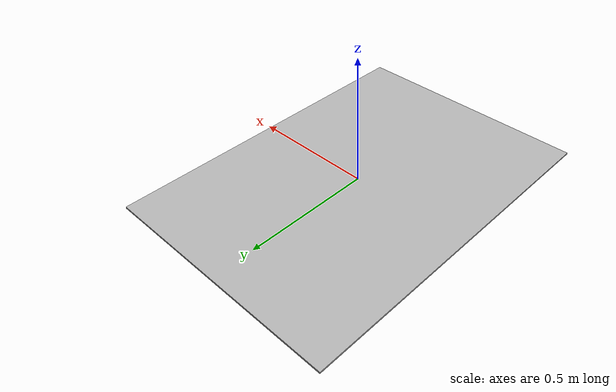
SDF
<?xml version="1.0" ?>
<sdf version="1.5">
  <model name="chessboard">
    <static>true</static>
    <link name="chessboard_link">
      <visual name="front_visual">
        <geometry>
          <box>
            <size>0.975 1.342 0.005</size>
          </box>
        </geometry>
        <material>
          <script>
            <uri>file://chessboard/materials/scripts/</uri>
            <uri>file://chessboard/materials/textures/</uri>
            <name>chessboard</name>
          </script>
        </material>
      </visual>
      <visual name='rear_visual'>
        <pose frame=''>0 0 -0.0025 0 -0 0</pose>
        <geometry>
          <box>
            <size>0.975 1.342 0.005</size>
          </box>
        </geometry>
      </visual>
      <self_collide>0</self_collide>
      <enable_wind>0</enable_wind>
      <kinematic>0</kinematic>
    </link>
  </model>
</sdf>
